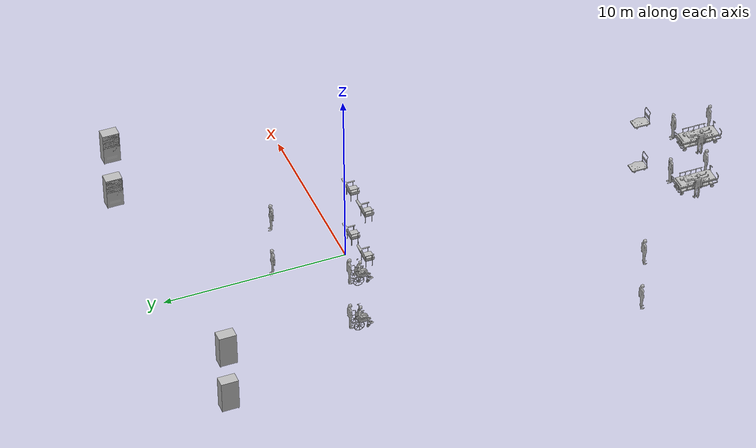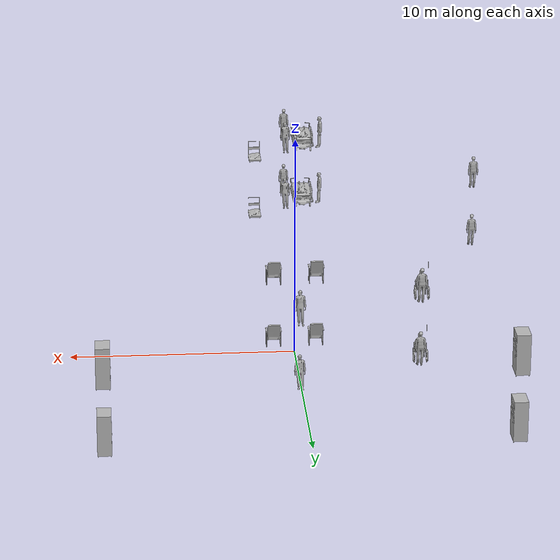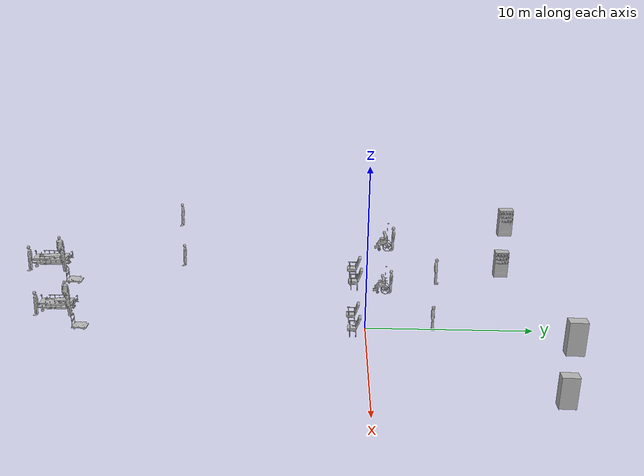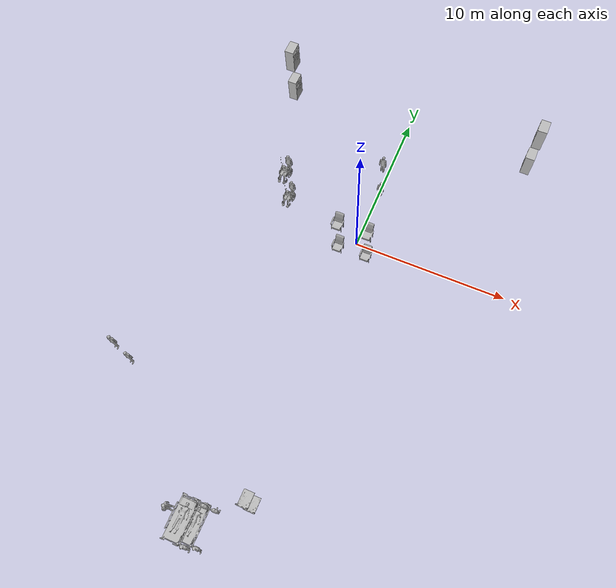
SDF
<sdf version="1.6">
 <world name="world">
  <gravity>0 0 -9.8</gravity>
  <scene><ambient>0.9 0.9 0.9 1</ambient><background>0.4 0.4 0.4 1</background><shadows>false</shadows></scene>
  <physics default="0" name="default_physics" type="ode">
   <max_step_size>0.001</max_step_size>
   <real_time_factor>1</real_time_factor>
   <real_time_update_rate>1000</real_time_update_rate>
  </physics>
  <model name="VisitorChair_1">
   <include><uri>model://VisitorChair</uri></include>
   <pose>-1.0052 -0.786961 0 0 -0 0</pose>
  </model>
  <model name="VisitorChair_2">
   <include><uri>model://VisitorChair</uri></include>
   <pose>0.899471 -0.744049 0 0 -0 0</pose>
  </model>
  <model name="OpScrubs_1">
   <include><uri>model://OpScrubs</uri></include>
   <pose>-9.61916 -12.5112 0 0 -0 0</pose>
  </model>
  <model name="OpScrubs_2">
   <include><uri>model://OpScrubs</uri></include>
   <pose>0.054597 4.05849 0 0 -0 3.12413</pose>
  </model>
  <model name="PatientWheelChair_1">
   <include><uri>model://PatientWheelChair</uri></include>
   <pose>-5.46091 1.23577 0 0 -0 0</pose>
  </model>
  <model name="OpScrubs_3">
   <include><uri>model://OpScrubs</uri></include>
   <pose>-5.38513 1.82526 0 0 -0 0</pose>
  </model>
  <model name="TrolleyBedPatient_1">
   <include><uri>model://TrolleyBedPatient</uri></include>
   <pose>-1.83202 -19.2612 0 0 -0 0</pose>
  </model>
  <model name="OpScrubs_4">
   <include><uri>model://OpScrubs</uri></include>
   <pose>-0.93616 -18.2252 0 0 0 -3.12479</pose>
  </model>
  <model name="OpScrubs_5">
   <include><uri>model://OpScrubs</uri></include>
   <pose>-2.66275 -18.9847 0 0 -0 1.57704</pose>
  </model>
  <model name="VendingMachine_1">
   <include><uri>model://VendingMachine</uri></include>
   <pose>-8.60588 9.57801 4.9e-05 0.000173 0 1.5708</pose>
  </model>
  <model name="VendingMachine_2">
   <include><uri>model://VendingMachine</uri></include>
   <pose>8.57644 9.83528 -1e-06 0 -1e-06 -1.5744</pose>
  </model>
  <model name="ParkingTrolleyMin_1">
   <include><uri>model://ParkingTrolleyMin</uri></include>
   <pose>0.715846 -17.1496 -0.000111 0 -0 0</pose>
  </model>
  <model name="OpScrubs_6">
   <include><uri>model://OpScrubs</uri></include>
   <pose>-0.947112 -20.3884 0 0 -0 0</pose>
  </model>
  <light name="ceiling_light_0" type="spot">
   <pose>-0.194533 13.8034 2.8 0 -0 0</pose>
   <diffuse>0.494118 0.494118 0.494118 1</diffuse>
   <specular>0.0941176 0.0941176 0.0941176 1</specular>
   <direction>0 0 -1</direction>
   <attenuation>
    <range>20</range>
    <constant>0.8</constant>
    <linear>0.1</linear>
    <quadratic>0.001</quadratic>
   </attenuation>
   <cast_shadows>0</cast_shadows>
   <spot><inner_angle>1.0</inner_angle><outer_angle>2.5</outer_angle><falloff>1</falloff></spot>
  </light>
  <model name="floor_1_VisitorChair_1">
   <include><uri>model://VisitorChair</uri></include>
   <pose>-1.0052 -0.786961 3.0 0 -0 0</pose>
  </model>
  <model name="floor_1_VisitorChair_2">
   <include><uri>model://VisitorChair</uri></include>
   <pose>0.899471 -0.744049 3.0 0 -0 0</pose>
  </model>
  <model name="floor_1_OpScrubs_1">
   <include><uri>model://OpScrubs</uri></include>
   <pose>-9.61916 -12.5112 3.0 0 -0 0</pose>
  </model>
  <model name="floor_1_OpScrubs_2">
   <include><uri>model://OpScrubs</uri></include>
   <pose>0.054597 4.05849 3.0 0 -0 3.12413</pose>
  </model>
  <model name="floor_1_PatientWheelChair_1">
   <include><uri>model://PatientWheelChair</uri></include>
   <pose>-5.46091 1.23577 3.0 0 -0 0</pose>
  </model>
  <model name="floor_1_OpScrubs_3">
   <include><uri>model://OpScrubs</uri></include>
   <pose>-5.38513 1.82526 3.0 0 -0 0</pose>
  </model>
  <model name="floor_1_TrolleyBedPatient_1">
   <include><uri>model://TrolleyBedPatient</uri></include>
   <pose>-1.83202 -19.2612 3.0 0 -0 0</pose>
  </model>
  <model name="floor_1_OpScrubs_4">
   <include><uri>model://OpScrubs</uri></include>
   <pose>-0.93616 -18.2252 3.0 0 0 -3.12479</pose>
  </model>
  <model name="floor_1_OpScrubs_5">
   <include><uri>model://OpScrubs</uri></include>
   <pose>-2.66275 -18.9847 3.0 0 -0 1.57704</pose>
  </model>
  <model name="floor_1_VendingMachine_1">
   <include><uri>model://VendingMachine</uri></include>
   <pose>-8.60588 9.57801 3.000049 0.000173 0 1.5708</pose>
  </model>
  <model name="floor_1_VendingMachine_2">
   <include><uri>model://VendingMachine</uri></include>
   <pose>8.57644 9.83528 2.999999 0 -1e-06 -1.5744</pose>
  </model>
  <model name="floor_1_ParkingTrolleyMin_1">
   <include><uri>model://ParkingTrolleyMin</uri></include>
   <pose>0.715846 -17.1496 2.999889 0 -0 0</pose>
  </model>
  <model name="floor_1_OpScrubs_6">
   <include><uri>model://OpScrubs</uri></include>
   <pose>-0.947112 -20.3884 3.0 0 -0 0</pose>
  </model>
  <light name="floor_1_ceiling_light_0" type="spot">
   <pose>-0.194533 13.8034 2.8 0 -0 0</pose>
   <diffuse>0.494118 0.494118 0.494118 1</diffuse>
   <specular>0.0941176 0.0941176 0.0941176 1</specular>
   <direction>0 0 -1</direction>
   <attenuation>
    <range>20</range>
    <constant>0.8</constant>
    <linear>0.1</linear>
    <quadratic>0.001</quadratic>
   </attenuation>
   <cast_shadows>0</cast_shadows>
   <spot><inner_angle>1.0</inner_angle><outer_angle>2.5</outer_angle><falloff>1</falloff></spot>
  </light>
 </world>
</sdf>

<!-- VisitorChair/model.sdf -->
<sdf version="1.6">
  <model name="VisitorChair">
   <static>true</static>
    <link name="body">
      <pose>0 0 0 0 0 0</pose>

      <visual name="visual">
        <geometry>
          <mesh>
            <uri>model://VisitorChair/meshes/VisitorChair.obj</uri>
          </mesh>
        </geometry>
      </visual>

      <collision name="collision">
        <geometry>
          <mesh>
            <uri>model://VisitorChair/meshes/VisitorChair_Col.obj</uri>
          </mesh>
        </geometry>
      </collision>

    </link>
  </model>
</sdf>

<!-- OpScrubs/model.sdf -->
<sdf version="1.6">
  <model name="OpScrubs">
   <static>true</static>
    <link name="body">
      <pose>0 0 0 0 0 0</pose>

      <visual name="visual">
        <geometry>
          <mesh>
            <uri>model://OpScrubs/meshes/OpScrubs.obj</uri>
          </mesh>
        </geometry>
      </visual>

      <collision name="collision">
        <geometry>
          <mesh>
            <uri>model://OpScrubs/meshes/OpScrubs_Col.obj</uri>
          </mesh>
        </geometry>
      </collision>

    </link>
  </model>
</sdf>

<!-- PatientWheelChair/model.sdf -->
<sdf version="1.6">
  <model name="PatientWheelChair">
   <static>true</static>
    <link name="body">
      <pose>0 0 0 0 0 0</pose>

      <visual name="visual">
        <geometry>
          <mesh>
            <uri>model://PatientWheelChair/meshes/PatientWheelChair.obj</uri>
          </mesh>
        </geometry>
      </visual>

      <collision name="collision">
        <geometry>
          <mesh>
            <uri>model://PatientWheelChair/meshes/PatientWheelChair_Col.obj</uri>
          </mesh>
        </geometry>
      </collision>

    </link>
  </model>
</sdf>

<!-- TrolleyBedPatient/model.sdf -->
<sdf version="1.6">
  <model name="TrolleyBedPatient">
   <static>true</static>
    <link name="body">
      <pose>0 0 0 0 0 0</pose>

      <visual name="visual">
        <geometry>
          <mesh>
            <uri>model://TrolleyBedPatient/meshes/TrolleyBedPatient.obj</uri>
          </mesh>
        </geometry>
      </visual>

      <collision name="collision">
        <geometry>
          <mesh>
            <uri>model://TrolleyBedPatient/meshes/TrolleyBedPatient.obj</uri>
          </mesh>
        </geometry>
      </collision>

    </link>
  </model>
</sdf>

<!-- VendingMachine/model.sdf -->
<sdf version="1.6">
  <model name="VendingMachine">
    <link name="body">
      <pose>0 0 0 0 0 0</pose>

      <visual name="visual">
        <geometry>
          <mesh>
            <uri>model://VendingMachine/meshes/vend.obj</uri>
          </mesh>
        </geometry>
      </visual>

      <collision name="collision">
        <geometry>
          <mesh>
            <uri>model://VendingMachine/meshes/vend.obj</uri>
          </mesh>
        </geometry>
      </collision>

    </link>
  </model>
</sdf>

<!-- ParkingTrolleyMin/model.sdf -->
<sdf version="1.6">
  <model name="ParkingTrolleyMin">
    <link name="body">
      <pose>0 0 0 0 0 0</pose>

        <visual name="visual">
          <pose>0 0 0 0 0 0</pose>
          <geometry>
            <mesh><uri>model://ParkingTrolleyMin/meshes/trolleymin.obj</uri></mesh>
          </geometry>
        </visual>

        <collision name="collision">
          <pose>0 0 0 0 0 0</pose>
          <geometry>
            <mesh><uri>model://ParkingTrolleyMin/meshes/trolleymin.obj</uri></mesh>
          </geometry>
        </collision>

    </link>
  </model>
</sdf>
